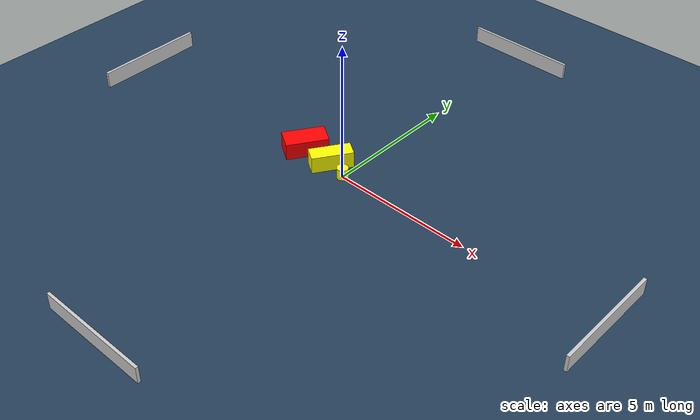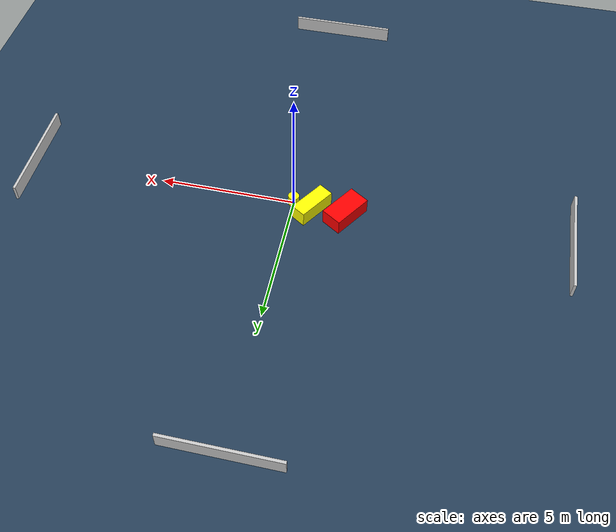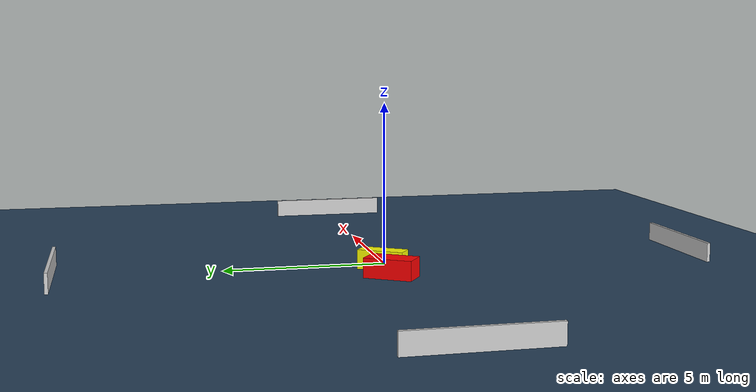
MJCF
<?xml version="1.0" ?>
<mujoco model="generated_environment">
  <option timestep="0.01" integrator="RK4" cone="elliptic"/>
  <default>
    <geom density="1"/>
  </default>
  <asset>
    <texture builtin="gradient" height="3072" name="skybox" rgb1="0.3 0.5 0.7" rgb2="0 0 0" type="skybox" width="512"/>
    <texture builtin="checker" height="300" name="groundplane" rgb1="0.2 0.3 0.4" rgb2="0.1 0.2 0.3" type="2d" width="300"/>
    <material name="groundplane" reflectance="0.2" texrepeat="5 5" texture="groundplane"/>
  </asset>
  <worldbody>
    <light dir="0 0 -1" directional="true" pos="0 0 1.5"/>
    <geom condim="3" friction="0.5 0.005 0.001" material="groundplane" name="floor" pos="0 0 0" size="0 0 0.05" type="plane"/>
    <body name="walls">
      <geom name="wall_1" condim="4" pos="-10.0 0.0 0.3" rgba="0.800000011920929 0.800000011920929 0.800000011920929 1.0" size="0.05 2.0 0.3" type="box"/>
      <geom name="wall_2" condim="4" pos="10.0 0.0 0.3" rgba="0.800000011920929 0.800000011920929 0.800000011920929 1.0" size="0.05 2.0 0.3" type="box"/>
      <geom name="wall_3" condim="4" pos="0.0 -10.0 0.3" rgba="0.800000011920929 0.800000011920929 0.800000011920929 1.0" size="2.0 0.05 0.3" type="box"/>
      <geom name="wall_4" condim="4" pos="0.0 10.0 0.3" rgba="0.800000011920929 0.800000011920929 0.800000011920929 1.0" size="2.0 0.05 0.3" type="box"/>
    </body>
    <body name="robot">
      <joint name="joint_x" type="slide" pos="0 0 0" axis="1 0 0"/>
      <joint name="joint_y" type="slide" pos="0 0 0" axis="0 1 0"/>
      <geom name="robot" type="cylinder" pos="0.0 0.0 0.2" size="0.2 0.2 0.0" mass="5.0" friction="1.0 0.005 0.0001" condim="4" rgba="1.0 1.0 0.0 1.0"/>
    </body>
    <body name="obstacle_1_movable">
      <geom name="obstacle_1_movable" condim="4" pos="-0.7231996188800699 0.20956020207870776 0.3" euler="0 0 56.91384616333203" friction="0.0 0.005 0.001" rgba="1.0 1.0 0.0 1.0" size="0.7241094098611325 0.28581338779984855 0.3" type="box" mass="0.1"/>
      <joint type="free"/>
    </body>
    <body name="obstacle_2_static">
      <geom name="obstacle_2_static" condim="4" pos="-1.940773388757742 0.2253825903134987 0.3" euler="0 0 326.85964594274304" friction="0.0 0.005 0.001" rgba="1.0 0.0 0.0 1.0" size="0.39448954594199737 0.7463783819068144 0.3" type="box"/>
    </body>
  </worldbody>
  <actuator>
    <motor name="actuator_x" joint="joint_x" gear="1" ctrlrange="-1 1"/>
    <motor name="actuator_y" joint="joint_y" gear="1" ctrlrange="-1 1"/>
  </actuator>
</mujoco>
